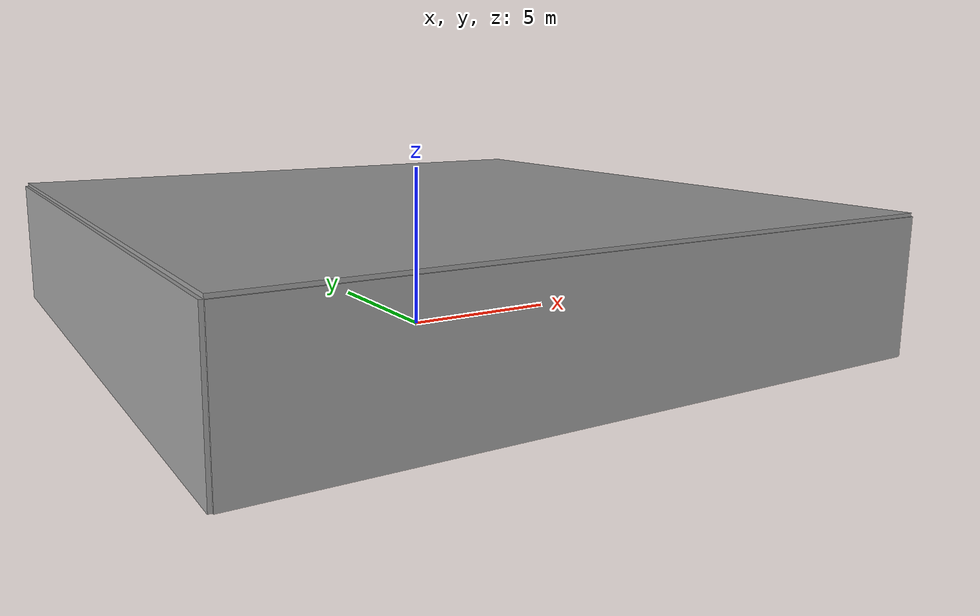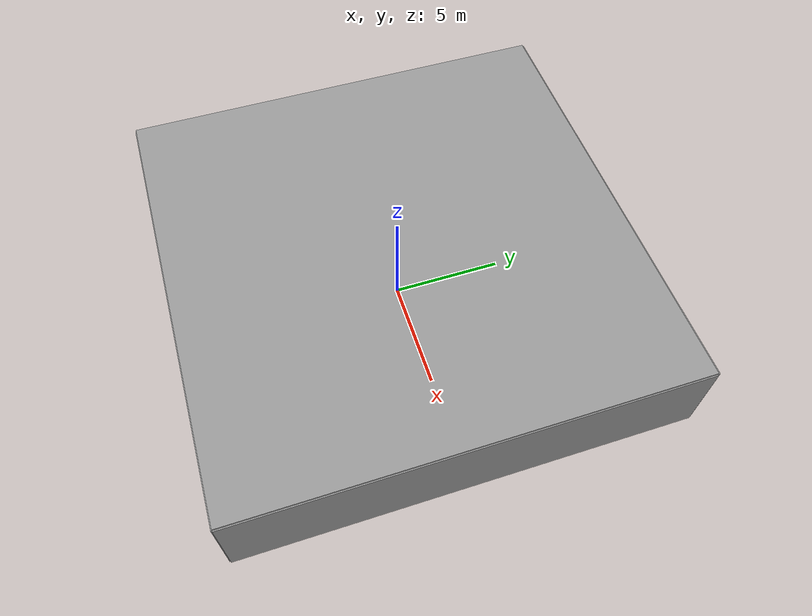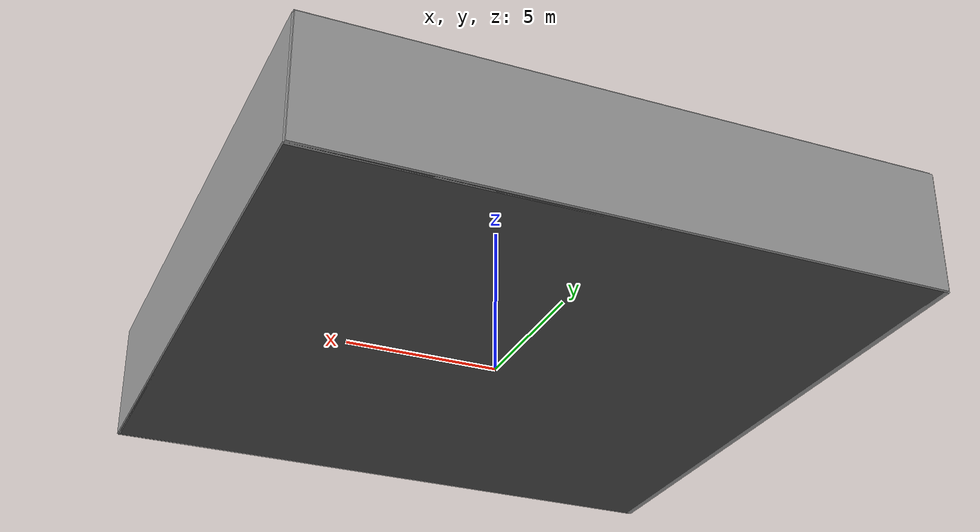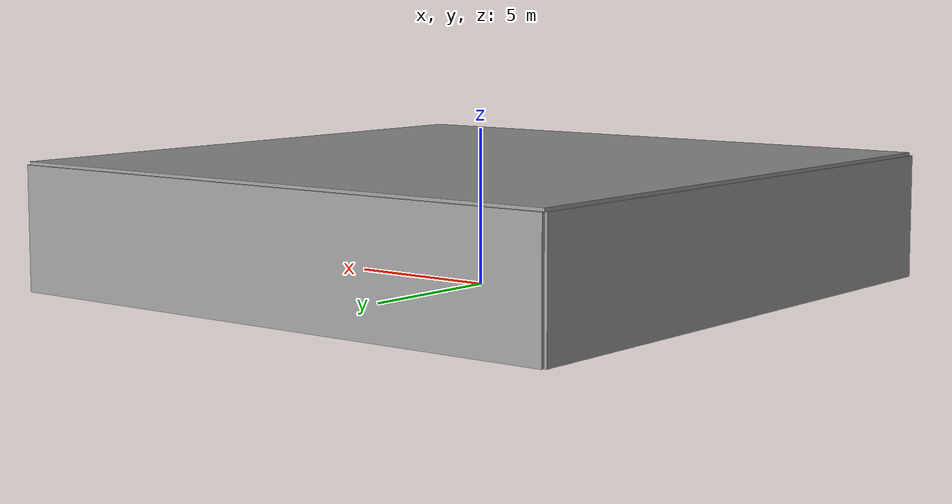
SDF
<?xml version='1.0'?>
<sdf version='1.6'>
  <model name='four_walls'>
  <static>1</static>
	<link name='Ceiling'>
    <collision name='Ceiling_Collision'>
      <geometry>
        <box>
          <size>20 20 0.1</size>
        </box>
      </geometry>
      <max_contacts>10</max_contacts>
      <surface>
        <bounce/>
        <friction>
          <ode/>
        </friction>
        <contact>
          <ode/>
        </contact>
      </surface>
    </collision>
    <visual name='Ceiling_Visual'>
      <geometry>
        <box>
          <size>20 20 0.1</size>
        </box>
      </geometry>
      <material>
        <script>
          <uri>file://media/materials/scripts/gazebo.material</uri>
          <name>Gazebo/Grey</name>
        </script>
      </material>
    </visual>
    <pose>0 0 4.05 0 0 0</pose>
    <self_collide>0</self_collide>
    <kinematic>0</kinematic>
    <gravity>1</gravity>
  </link>
  <link name='Wall_South'>
    <collision name='Wall_South_Collision'>
      <geometry>
        <box>
          <size>20 0.1 4</size>
        </box>
      </geometry>
      <pose>0 0 2 0 -0 0</pose>
      <max_contacts>10</max_contacts>
      <surface>
        <bounce/>
        <friction>
          <ode/>
        </friction>
        <contact>
          <ode/>
        </contact>
      </surface>
    </collision>
    <visual name='Wall_South_Visual'>
      <pose>0 0 2 0 -0 0</pose>
      <geometry>
        <box>
          <size>20 0.1 4</size>
        </box>
      </geometry>
      <material>
        <script>
          <uri>file://media/materials/scripts/gazebo.material</uri>
          <name>Gazebo/Grey</name>
        </script>
      </material>
    </visual>
    <velocity_decay>
      <linear>0</linear>
      <angular>0</angular>
    </velocity_decay>
    <pose>0 -10 0 0 -0 0</pose>
    <self_collide>0</self_collide>
    <kinematic>0</kinematic>
    <gravity>1</gravity>
  </link>
  <link name='Wall_East'>
    <collision name='Wall_21_Collision'>
      <geometry>
        <box>
          <size>20 0.1 4</size>
        </box>
      </geometry>
      <pose>0 0 2 0 -0 0</pose>
      <max_contacts>10</max_contacts>
      <surface>
        <bounce/>
        <friction>
          <ode/>
        </friction>
        <contact>
          <ode/>
        </contact>
      </surface>
    </collision>
    <visual name='Wall_21_Visual'>
      <pose>0 0 2 0 -0 0</pose>
      <geometry>
        <box>
          <size>20 0.1 4</size>
        </box>
      </geometry>
      <material>
        <script>
          <uri>file://media/materials/scripts/gazebo.material</uri>
          <name>Gazebo/Grey</name>
        </script>
      </material>
    </visual>
    <velocity_decay>
      <linear>0</linear>
      <angular>0</angular>
    </velocity_decay>
    <pose>10 0 0 0 -0 1.5708</pose>
    <self_collide>0</self_collide>
    <kinematic>0</kinematic>
    <gravity>1</gravity>
  </link>
  <link name='Wall_North'>
    <collision name='Wall_22_Collision'>
      <geometry>
        <box>
          <size>20 0.2 4</size>
        </box>
      </geometry>
      <pose>0 0 2 0 -0 0</pose>
      <max_contacts>10</max_contacts>
      <surface>
        <bounce/>
        <friction>
          <ode/>
        </friction>
        <contact>
          <ode/>
        </contact>
      </surface>
    </collision>
    <visual name='Wall_22_Visual'>
      <pose>0 0 2 0 -0 0</pose>
      <geometry>
        <box>
          <size>20 0.2 4</size>
        </box>
      </geometry>
      <material>
        <script>
          <uri>file://media/materials/scripts/gazebo.material</uri>
          <name>Gazebo/Grey</name>
        </script>
      </material>
    </visual>
    <velocity_decay>
      <linear>0</linear>
      <angular>0</angular>
    </velocity_decay>
    <pose>0 10 0 0 -0 0</pose>
    <self_collide>0</self_collide>
    <kinematic>0</kinematic>
    <gravity>1</gravity>
  </link>
  <link name='Wall_West'>
    <collision name='Wall_23_Collision'>
      <geometry>
        <box>
          <size>20 0.2 4</size>
        </box>
      </geometry>
      <pose>0 0 2 0 -0 0</pose>
      <max_contacts>10</max_contacts>
      <surface>
        <bounce/>
        <friction>
          <ode/>
        </friction>
        <contact>
          <ode/>
        </contact>
      </surface>
    </collision>
    <visual name='Wall_23_Visual'>
      <pose>0 0 2 0 -0 0</pose>
      <geometry>
        <box>
          <size>20 0.2 4</size>
        </box>
      </geometry>
      <material>
        <script>
          <uri>file://media/materials/scripts/gazebo.material</uri>
          <name>Gazebo/Grey</name>
        </script>
      </material>
    </visual>
    <velocity_decay>
      <linear>0</linear>
      <angular>0</angular>
    </velocity_decay>
    <pose>-10 0 0 0 0 -1.5708</pose>
    <self_collide>0</self_collide>
    <kinematic>0</kinematic>
    <gravity>1</gravity>
  </link>
	<link name="Ground_link">
    <collision name="collision">
			<pose>0 0 .05 0 -0 0</pose>
      <geometry>
        <box>
          <size>20 20 0.1</size>
        </box>
      </geometry>
      <max_contacts>10</max_contacts>
      <surface>
        <bounce />
        <friction>
          <ode />
        </friction>
        <contact>
          <ode />
        </contact>
      </surface>
    </collision>
    <visual name="visual">
			<pose>0 0 .05 0 -0 0</pose>
      <cast_shadows>1</cast_shadows>
      <geometry>
        <box>
          <size>20 20 0.1</size>
        </box>
      </geometry>
      <material>
        <script>
          <uri>file://media/materials/scripts/gazebo.material</uri>
          <name>Gazebo/Road</name>
        </script>
      </material>
    </visual>
  </link>
  </model>
</sdf>
